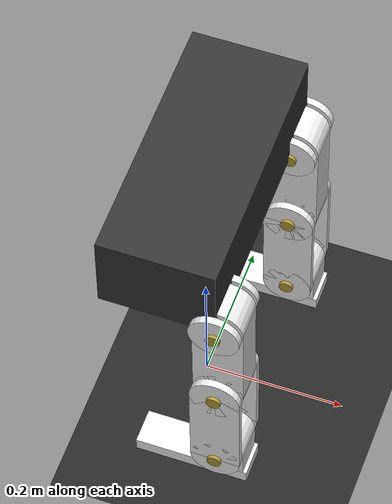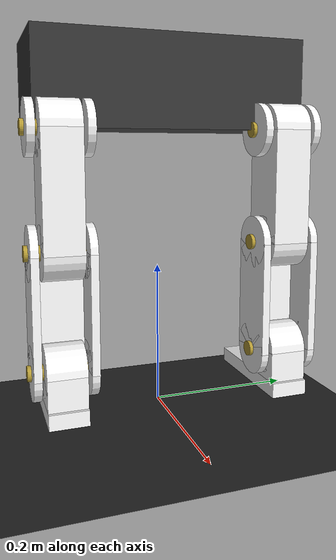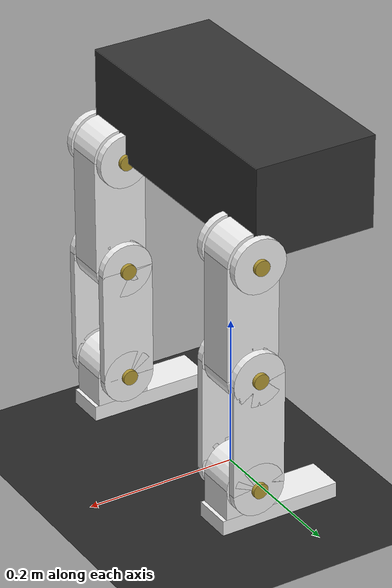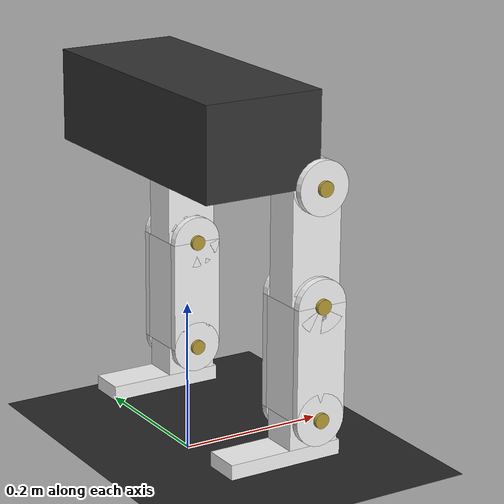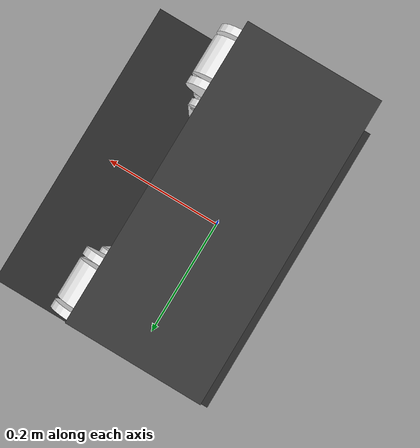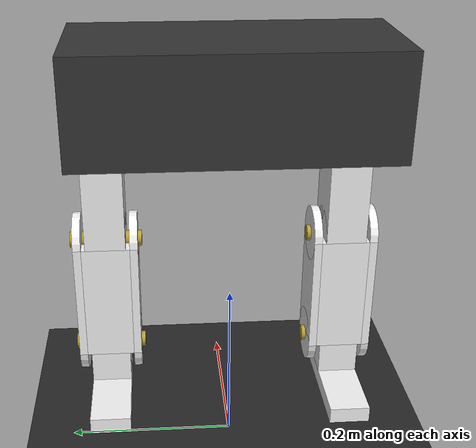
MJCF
<mujoco model="autonomous_balance_biped">
  <option timestep="0.002" gravity="0 0 -9.81"/>

  <asset>
    <material name="white_print" rgba="0.95 0.95 0.95 1" specular="0.1" shininess="0.1"/>
    <material name="brass_screw" rgba="0.7 0.6 0.2 1" specular="1" shininess="0.8"/>
    <material name="dark_grey" rgba="0.2 0.2 0.2 1"/>
  </asset>

  <default>
    <geom contype="0" conaffinity="1"/>
    <joint damping="5.0" armature="0.05"/>
  </default>

  <worldbody>
    <light pos="0 0 3" dir="0 0 -1"/>
    <geom type="plane" size="5 5 0.1" rgba="0.15 0.15 0.15 1" contype="1" conaffinity="1"/>

    <body name="pelvis" pos="0 0 0.45">

      <freejoint/>
      <site name="imu_site" pos="0 0 0" size="0.02" rgba="1 0 0 1"/>

      <geom type="box" size="0.08 0.18 0.06" material="dark_grey"/>

      <geom type="cylinder" size="0.035 0.005" pos="0.08 -0.185 -0.06" zaxis="0 1 0" material="white_print"/>
      <geom type="cylinder" size="0.035 0.005" pos="0.08 -0.115 -0.06" zaxis="0 1 0" material="white_print"/>
      <geom type="cylinder" size="0.035 0.005" pos="0.08 0.185 -0.06" zaxis="0 1 0" material="white_print"/>
      <geom type="cylinder" size="0.035 0.005" pos="0.08 0.115 -0.06" zaxis="0 1 0" material="white_print"/>

      <body name="right_thigh" pos="0.08 -0.15 -0.06">
        <joint name="right_hip" type="hinge" axis="0 1 0" range="-120 90"/>
        <geom type="cylinder" size="0.01 0.045" zaxis="0 1 0" material="brass_screw"/>

        <geom type="cylinder" size="0.035 0.025" pos="0 0 0" zaxis="0 1 0" material="white_print"/>
        <geom type="box" size="0.035 0.025 0.075" pos="0 0 -0.075" material="white_print"/>
        <geom type="cylinder" size="0.035 0.025" pos="0 0 -0.15" zaxis="0 1 0" material="white_print"/>

        <body name="right_calf" pos="0 0 -0.15">
          <joint name="right_knee" type="hinge" axis="0 1 0" range="-160 0"/>
          <geom type="cylinder" size="0.01 0.045" zaxis="0 1 0" material="brass_screw"/>

          <geom type="cylinder" size="0.035 0.005" pos="0 -0.035 0" zaxis="0 1 0" material="white_print"/>
          <geom type="box" size="0.035 0.005 0.075" pos="0 -0.035 -0.075" material="white_print"/>
          <geom type="cylinder" size="0.035 0.005" pos="0 -0.035 -0.15" zaxis="0 1 0" material="white_print"/>
          <geom type="cylinder" size="0.035 0.005" pos="0 0.035 0" zaxis="0 1 0" material="white_print"/>
          <geom type="box" size="0.035 0.005 0.075" pos="0 0.035 -0.075" material="white_print"/>
          <geom type="cylinder" size="0.035 0.005" pos="0 0.035 -0.15" zaxis="0 1 0" material="white_print"/>
          <geom type="box" size="0.01 0.03 0.075" pos="-0.025 0 -0.075" material="white_print"/>

          <body name="right_foot" pos="0 0 -0.15">
            <joint name="right_ankle" type="hinge" axis="0 1 0" range="-90 90"/>
            <geom type="cylinder" size="0.01 0.045" zaxis="0 1 0" material="brass_screw"/>

            <geom type="cylinder" size="0.035 0.025" pos="0 0 0" zaxis="0 1 0" material="white_print"/>
            <geom type="box" size="0.035 0.025 0.02" pos="0 0 -0.02" material="white_print"/>
            <geom type="box" size="0.08 0.025 0.01" pos="-0.04 0 -0.05" material="white_print"/>
          </body>
        </body>
      </body>

      <body name="left_thigh" pos="0.08 0.15 -0.06">
        <joint name="left_hip" type="hinge" axis="0 1 0" range="-120 90"/>
        <geom type="cylinder" size="0.01 0.045" zaxis="0 1 0" material="brass_screw"/>

        <geom type="cylinder" size="0.035 0.025" pos="0 0 0" zaxis="0 1 0" material="white_print"/>
        <geom type="box" size="0.035 0.025 0.075" pos="0 0 -0.075" material="white_print"/>
        <geom type="cylinder" size="0.035 0.025" pos="0 0 -0.15" zaxis="0 1 0" material="white_print"/>

        <body name="left_calf" pos="0 0 -0.15">
          <joint name="left_knee" type="hinge" axis="0 1 0" range="-160 0"/>
          <geom type="cylinder" size="0.01 0.045" zaxis="0 1 0" material="brass_screw"/>

          <geom type="cylinder" size="0.035 0.005" pos="0 -0.035 0" zaxis="0 1 0" material="white_print"/>
          <geom type="box" size="0.035 0.005 0.075" pos="0 -0.035 -0.075" material="white_print"/>
          <geom type="cylinder" size="0.035 0.005" pos="0 -0.035 -0.15" zaxis="0 1 0" material="white_print"/>
          <geom type="cylinder" size="0.035 0.005" pos="0 0.035 0" zaxis="0 1 0" material="white_print"/>
          <geom type="box" size="0.035 0.005 0.075" pos="0 0.035 -0.075" material="white_print"/>
          <geom type="cylinder" size="0.035 0.005" pos="0 0.035 -0.15" zaxis="0 1 0" material="white_print"/>
          <geom type="box" size="0.01 0.03 0.075" pos="-0.025 0 -0.075" material="white_print"/>

          <body name="left_foot" pos="0 0 -0.15">
            <joint name="left_ankle" type="hinge" axis="0 1 0" range="-90 90"/>
            <geom type="cylinder" size="0.01 0.045" zaxis="0 1 0" material="brass_screw"/>

            <geom type="cylinder" size="0.035 0.025" pos="0 0 0" zaxis="0 1 0" material="white_print"/>
            <geom type="box" size="0.035 0.025 0.02" pos="0 0 -0.02" material="white_print"/>
            <geom type="box" size="0.08 0.025 0.01" pos="-0.04 0 -0.05" material="white_print"/>
          </body>
        </body>
      </body>

    </body>
  </worldbody>

  <actuator>
    <position joint="right_hip" kp="800" name="pos_right_hip"/>
    <position joint="right_knee" kp="800" name="pos_right_knee"/>
    <position joint="right_ankle" kp="500" name="pos_right_ankle"/>

    <position joint="left_hip" kp="800" name="pos_left_hip"/>
    <position joint="left_knee" kp="800" name="pos_left_knee"/>
    <position joint="left_ankle" kp="500" name="pos_left_ankle"/>
  </actuator>

  <sensor>
    <framezaxis name="imu_tilt" objtype="site" objname="imu_site"/>
    <gyro name="imu_gyro" site="imu_site"/>
  </sensor>
</mujoco>
